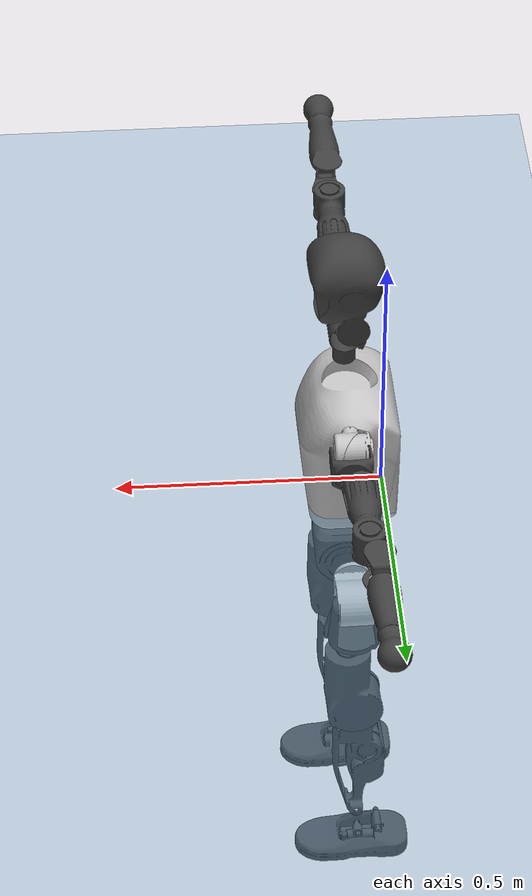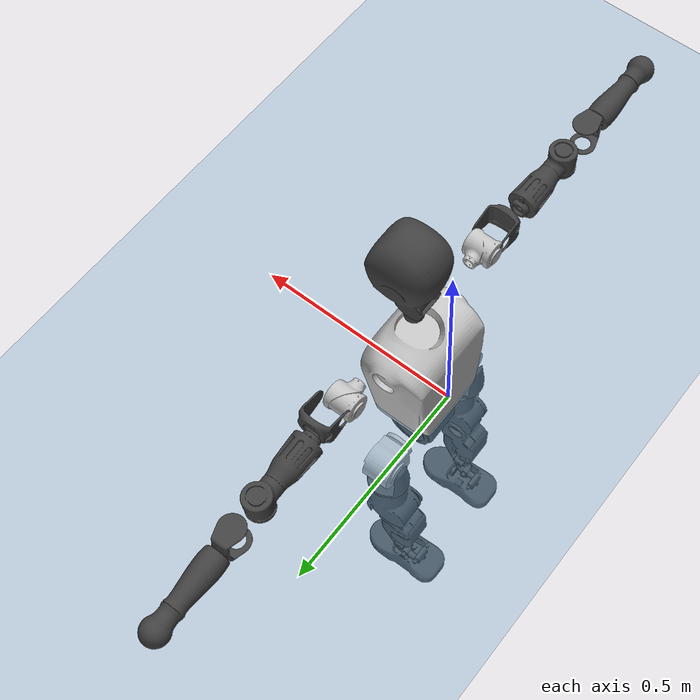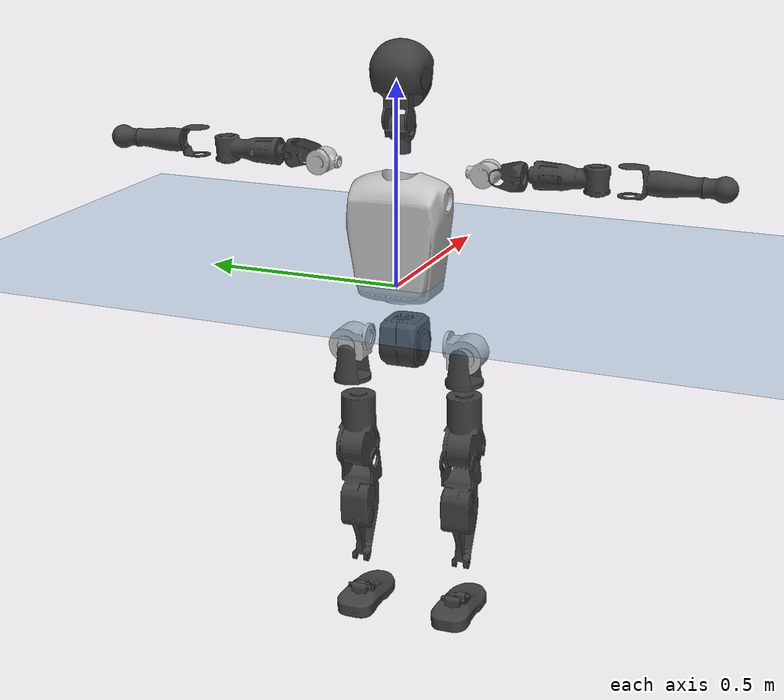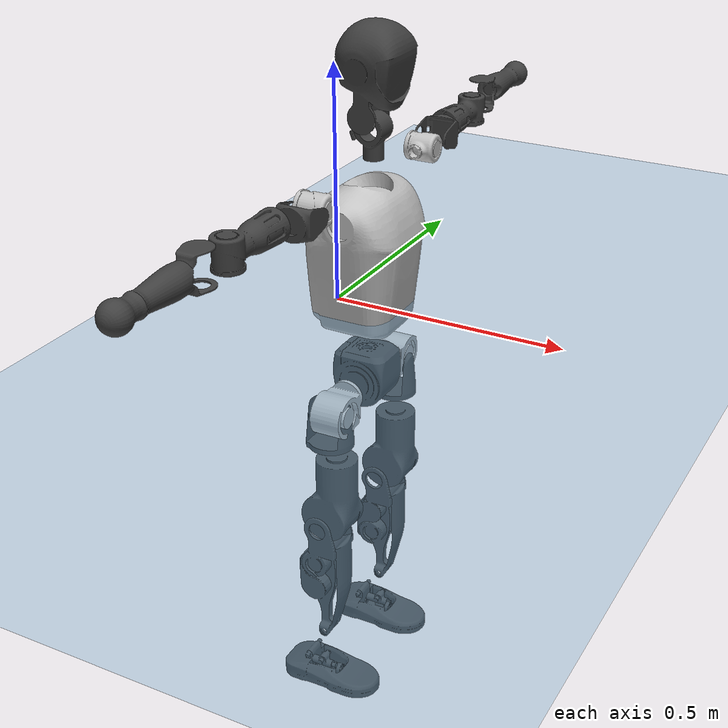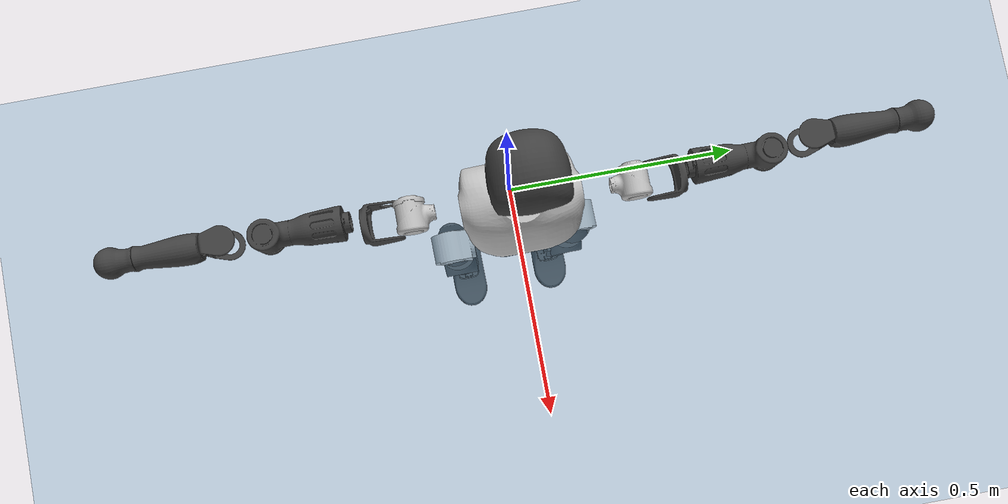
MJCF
<mujoco model="T1">
  <compiler angle="radian" assetdir="assets" balanceinertia="true" inertiafromgeom="false"/>

  <option timestep="0.005" density="1.2" viscosity="2e-05"/>

  <size nkey="1"/>

  <visual>
    <quality shadowsize="8192"/>
    <map shadowclip="0.5"/>
  </visual>

  <default>
    <default class="/">
      <joint armature="0.01" damping="0.01" frictionloss="0.1"/>
      <geom contype="0" conaffinity="0" group="1" solref="-1000 -80"/>
      <site size="0.01 0.005 0.005" group="5"/>
      <general forcelimited="true" biastype="affine" gainprm="25" biasprm="0 -25 -0.6"/>
      <default class="t1">
        <geom rgba="0.25 0.25 0.25 1"/>
        <default class="visual">
          <geom type="mesh" group="2"/>
        </default>
        <default class="collision">
          <geom group="3"/>
        </default>
        <default class="foot">
          <geom size="0.1115 0.05 0.015" type="box" condim="6" group="4" priority="1" solimp="0.015 1 0.015"/>
        </default>
        <default class="reward_collision_sphere">
          <geom group="5" rgba="1 0 0 1"/>
        </default>
      </default>
    </default>
  </default>

  <asset>
    <texture type="skybox" colorspace="auto" name="//unnamed_texture_0" builtin="gradient" rgb1="0.95 0.95 0.95" rgb2="0.95 0.95 0.95" width="100" height="600"/>
    <texture type="2d" colorspace="auto" name="texplane" builtin="checker" rgb1="0.345 0.575 0.748" rgb2="0.345 0.575 0.748" markrgb="1 1 1" width="512" height="512"/>
    <material name="MatPlane" class="/" texture="texplane" texuniform="true" texrepeat="2 2" specular="0.9"/>
    <mesh name="Trunk" class="/" file="Trunk.stl"/>
    <mesh name="H1" class="/" file="H1.stl"/>
    <mesh name="H2" class="/" file="H2.stl"/>
    <mesh name="AL1" class="/" file="AL1.stl"/>
    <mesh name="AL2" class="/" file="AL2.stl"/>
    <mesh name="AL3" class="/" file="AL3.stl"/>
    <mesh name="left_hand_link" class="/" file="left_hand_link.stl"/>
    <mesh name="AR1" class="/" file="AR1.stl"/>
    <mesh name="AR2" class="/" file="AR2.stl"/>
    <mesh name="AR3" class="/" file="AR3.stl"/>
    <mesh name="right_hand_link" class="/" file="right_hand_link.stl"/>
    <mesh name="Waist" class="/" file="Waist.stl"/>
    <mesh name="Hip_Pitch_Left" class="/" file="Hip_Pitch_Left.stl"/>
    <mesh name="Hip_Roll_Left" class="/" file="Hip_Roll_Left.stl"/>
    <mesh name="Hip_Yaw_Left" class="/" file="Hip_Yaw_Left.stl"/>
    <mesh name="Shank_Left" class="/" file="Shank_Left.stl"/>
    <mesh name="Ankle_Cross_Left" class="/" file="Ankle_Cross_Left.stl"/>
    <mesh name="left_foot_link" class="/" file="left_foot_link.stl"/>
    <mesh name="Hip_Pitch_Right" class="/" file="Hip_Pitch_Right.stl"/>
    <mesh name="Hip_Roll_Right" class="/" file="Hip_Roll_Right.stl"/>
    <mesh name="Hip_Yaw_Right" class="/" file="Hip_Yaw_Right.stl"/>
    <mesh name="Shank_Right" class="/" file="Shank_Right.stl"/>
    <mesh name="Ankle_Cross_Right" class="/" file="Ankle_Cross_Right.stl"/>
    <mesh name="right_foot_link" class="/" file="right_foot_link.stl"/>
  </asset>

  <worldbody>
    <geom name="floor" class="/" size="100 100 0.125" type="plane" group="0" material="MatPlane"/>
    <light name="toplight_shadow" class="/" pos="0 0 5" dir="0.0990148 0.0990148 -0.990148" type="directional" ambient="0.04 0.04 0.04" diffuse="0.55 0.55 0.55" specular="0.12 0.12 0.12"/>
    <light name="toplight_fill" class="/" pos="0 0 5" dir="0.0990148 0.0990148 -0.990148" type="directional" castshadow="false" ambient="0.04 0.04 0.04" diffuse="0.3 0.3 0.3" specular="0.08 0.08 0.08"/>
    <body name="trunk" childclass="t1" pos="0.00768882 0.0123136 -0.00912079" quat="0.999988 -0.00267824 0.00232384 0.00326527">
      <inertial pos="0.0579287 0.00604031 0.130837" quat="0.999654 -0.0107571 -0.0190906 -0.0145366" mass="27.4369" diaginertia="0.122642 0.451094 0.197412"/>
      <joint name="//unnamed_joint_0" type="free" armature="0" damping="0" frictionloss="0"/>
      <geom name="//unnamed_geom_1" class="visual" rgba="0.76 0.76 0.76 1" mesh="Trunk"/>
      <geom name="//unnamed_geom_2" class="collision" size="0.0979158 0.130554 0.195832" pos="0.0648102 0 0.158528" type="box"/>
      <geom name="//unnamed_geom_3" class="reward_collision_sphere" size="0.150137" pos="0.0648102 0 0.132107"/>
      <geom name="//unnamed_geom_4" class="reward_collision_sphere" size="0.0195832" pos="0.0648102 0.128808 0"/>
      <geom name="//unnamed_geom_5" class="reward_collision_sphere" size="0.0195832" pos="0.0648102 -0.128808 0"/>
      <geom name="//unnamed_geom_6" class="reward_collision_sphere" size="0.0195832" pos="0.0648102 0.162147 0.237792"/>
      <geom name="//unnamed_geom_7" class="reward_collision_sphere" size="0.0195832" pos="0.0648102 -0.162147 0.237792"/>
      <site name="imu" pos="0.0511817 0.0689316 -0.0078086" size="0.0130554"/>
      <camera name="track" pos="0 -3.03078 0" quat="0.707107 0.707107 0 0" mode="trackcom"/>
      <camera name="ego_camera" pos="0.131781 0 0.554848" quat="-0.5 -0.5 0.5 0.5"/>
      <body name="H1" pos="0.0674793 0.00257045 0.322406" quat="0.99999 -0.00185102 0.000646012 0.00404749">
        <inertial pos="-0.00962754 -0.00467314 0.0660366" quat="0.714529 0.0108298 0.0266343 0.699015" mass="0.951504" diaginertia="0.000315841 0.00144394 0.00063381"/>
        <joint name="AAHead_yaw" pos="0 0 0" axis="-0.00183954 -0.0690711 0.99761" stiffness="0.00504878" range="-1.3617 1.49755" armature="0.0064916" damping="0.00695648" frictionloss="0.202805"/>
        <geom name="//unnamed_geom_8" class="visual" mesh="H1"/>
        <body name="H2" pos="-0.0131626 0.00347135 0.0840084" quat="0.999999 0.000295417 0.000509364 -0.00127845">
          <inertial pos="0.00520507 0.016843 0.130375" quat="0.984888 0.12633 -0.082965 -0.0845805" mass="1.6122" diaginertia="0.00335979 0.021249 0.00804114"/>
          <joint name="Head_pitch" pos="0 0 0" axis="0.0336785 -0.998178 0.0500549" stiffness="0.0394197" range="-1.14385 0.177026" armature="0.0101968" damping="0" frictionloss="0.177794"/>
          <geom name="//unnamed_geom_9" class="visual" mesh="H2"/>
          <geom name="//unnamed_geom_10" class="collision" size="0.104443" pos="0.0108017 0 0.145317"/>
          <geom name="//unnamed_geom_11" class="reward_collision_sphere" size="0.117499" pos="0.0216034 0 0.132107"/>
        </body>
      </body>
      <body name="AL1" pos="0.0721949 0.170242 0.285388" quat="0.999997 0.000482817 -0.00193332 -0.00164824">
        <inertial pos="-0.00416151 0.0619916 0.0150872" quat="0.462816 0.523076 -0.472011 0.537958" mass="0.927187" diaginertia="0.00161334 0.00842678 0.000978025"/>
        <joint name="Left_Shoulder_Pitch" pos="0 0 0" axis="0.0310854 0.997779 0.0589159" range="-3.31527 1.37566" armature="0.0168979" damping="0.0210783" frictionloss="0.107286"/>
        <geom name="//unnamed_geom_12" class="visual" rgba="0.76 0.76 0.76 1" mesh="AL1"/>
        <body name="AL2" pos="0.00623624 0.0829254 0.0127328" quat="0.999964 -0.00605384 0.00502191 0.00305694">
          <inertial pos="0.00493505 0.0737705 -0.000857076" quat="0.489942 0.511759 -0.489702 0.508185" mass="0.364352" diaginertia="0.000571452 0.00311549 0.000724095"/>
          <joint name="Left_Shoulder_Roll" pos="0 0 0" axis="-0.996578 0.0369643 -0.0739363" stiffness="0.0756491" range="-1.85794 1.8627" armature="0.0184405" damping="0.0864339" frictionloss="0.0397746"/>
          <geom name="//unnamed_geom_13" class="visual" mesh="AL2"/>
          <body name="AL3" pos="-0.0102733 0.0757434 0.00305351" quat="0.999973 -0.0023924 -0.00595153 0.00345974">
            <inertial pos="0.00126146 0.142213 0.00659372" quat="0.71482 0.697824 -0.0254422 -0.0377684" mass="2.00082" diaginertia="0.0207708 0.0949797 0.00332188"/>
            <joint name="Left_Elbow_Pitch" pos="0 0 0" axis="0.00791157 -0.998096 -0.0611622" stiffness="0.0622162" range="-2.59777 2.57681" armature="0.00297474" damping="0.0828919" frictionloss="0.0540409"/>
            <geom name="//unnamed_geom_14" class="visual" mesh="AL3"/>
            <geom name="//unnamed_geom_15" class="collision" size="0.0391663 0.0979158" pos="0 0.0757696 0" quat="0.707105 0.707108 0 0" type="cylinder"/>
            <geom name="//unnamed_geom_16" class="reward_collision_sphere" size="0.0469996"/>
            <body name="left_hand_link" pos="-0.00842039 0.222686 0.0147995" quat="0.999986 0.000756234 -0.00141533 0.00511995">
              <inertial pos="0.000422087 0.166035 0.0129172" quat="0.716411 0.697587 0.00882313 0.00703563" mass="0.650392" diaginertia="0.0108537 0.0688927 0.000819714"/>
              <joint name="Left_Elbow_Yaw" pos="0 0 0" axis="-0.02466 0.043109 0.998766" range="-2.41872 -0.0143009" armature="0.0166113" damping="0.00879856" frictionloss="0.0676235"/>
              <geom name="//unnamed_geom_17" class="visual" mesh="left_hand_link"/>
              <geom name="//unnamed_geom_18" class="collision" size="0.0391663 0.114235" pos="0 0.197001 0" quat="0.707105 0.707108 0 0" type="cylinder"/>
              <geom name="//unnamed_geom_19" class="reward_collision_sphere" size="0.0652772"/>
              <geom name="//unnamed_geom_20" class="reward_collision_sphere" size="0.045694" pos="0 0.166693 0"/>
              <geom name="//unnamed_geom_21" class="reward_collision_sphere" size="0.045694" pos="0 0.325809 0"/>
            </body>
          </body>
        </body>
      </body>
      <body name="AR1" pos="0.0602031 -0.16799 0.290453" quat="0.999991 -0.000535556 0.00159395 -0.00384339">
        <inertial pos="-0.00131917 -0.054236 -0.0142582" quat="0.505781 0.497962 -0.506782 0.489277" mass="1.17222" diaginertia="0.0021694 0.0101289 0.000943306"/>
        <joint name="Right_Shoulder_Pitch" pos="0 0 0" axis="-0.000289536 -0.999999 0.00100445" range="-1.10327 3.31442" armature="0.0191843" damping="0" frictionloss="0.098779"/>
        <geom name="//unnamed_geom_22" class="visual" rgba="0.76 0.76 0.76 1" mesh="AR1"/>
        <body name="AR2" pos="0.00329949 -0.084187 -0.00180495" quat="1 -0.000493984 -0.000369912 -0.000104222">
          <inertial pos="0.0043024 -0.0587397 0.0150459" quat="0.482005 0.483278 -0.547378 0.484243" mass="0.292799" diaginertia="0.000620153 0.00303039 0.000766763"/>
          <joint name="Right_Shoulder_Roll" pos="0 0 0" axis="-0.999991 0.00368546 0.00214497" range="-1.61484 1.29765" armature="0.0137883" damping="0.0785398" frictionloss="0.134502"/>
          <geom name="//unnamed_geom_23" class="visual" mesh="AR2"/>
          <body name="AR3" pos="-0.0113968 -0.0881379 0.0102373" quat="0.999999 -0.00133724 7.26519e-05 4.7769e-05">
            <inertial pos="-0.00697244 -0.120088 0.0039626" quat="0.707819 0.706394 -0.000428589 0.000378188" mass="2.01748" diaginertia="0.0172981 0.0804665 0.00201942"/>
            <joint name="Right_Elbow_Pitch" pos="0 0 0" axis="-0.00453472 0.999382 0.0348442" stiffness="0.0511669" range="-2.27517 2.26149" armature="0.00358543" damping="0" frictionloss="0.22278"/>
            <geom name="//unnamed_geom_24" class="visual" mesh="AR3"/>
            <geom name="//unnamed_geom_25" class="collision" size="0.0391663 0.0979158" pos="0 -0.0757696 0" quat="0.707105 0.707108 0 0" type="cylinder"/>
            <geom name="//unnamed_geom_26" class="reward_collision_sphere" size="0.0469996"/>
            <body name="right_hand_link" pos="-0.00205469 -0.225075 0.00371015" quat="0.999988 0.00383825 -0.00243702 -0.00158801">
              <inertial pos="0.00559549 -0.16381 0.0166519" quat="0.659037 0.750879 -0.0125699 0.0411529" mass="0.578614" diaginertia="0.014212 0.0649137 0.000764273"/>
              <joint name="Right_Elbow_Yaw" pos="0 0 0" axis="0.0432693 0.0182232 0.998897" stiffness="0.0679984" range="0.285837 2.13155" armature="0.0165865" damping="0.0341814" frictionloss="0.0921515"/>
              <geom name="//unnamed_geom_27" class="visual" mesh="right_hand_link"/>
              <geom name="//unnamed_geom_28" class="collision" size="0.0391663 0.114235" pos="0 -0.197001 0" quat="0.707105 0.707108 0 0" type="cylinder"/>
              <geom name="//unnamed_geom_29" class="reward_collision_sphere" size="0.0652772"/>
              <geom name="//unnamed_geom_30" class="reward_collision_sphere" size="0.045694" pos="0 -0.166693 0"/>
              <geom name="//unnamed_geom_31" class="reward_collision_sphere" size="0.045694" pos="0 -0.325809 0"/>
            </body>
          </body>
        </body>
      </body>
      <body name="Waist" pos="0.0590588 -0.00711175 -0.156417" quat="0.999993 -0.00264485 -0.00154687 0.00205847">
        <inertial pos="-0.0012313 -0.0011405 0.000751405" quat="0.979009 0.00678402 -0.19908 0.043149" mass="6.52254" diaginertia="0.00917804 0.044088 0.0192049"/>
        <joint name="Waist" pos="0 0 0" axis="0.0309838 -0.0604138 0.997692" stiffness="0.0829382" range="-1.55558 1.61564" armature="0.00853959" damping="0" frictionloss="0.215096"/>
        <geom name="//unnamed_geom_32" class="visual" mesh="Waist"/>
        <body name="Hip_Pitch_Left" pos="-0.00470494 0.146887 0.00711797" quat="0.999993 0.00212987 -0.000175109 0.00298216">
          <inertial pos="-0.0143981 -0.0195538 -0.0102648" quat="0.98915 0.14599 0.012034 0.0111914" mass="1.95017" diaginertia="0.00256993 0.0114826 0.00454107"/>
          <joint name="Left_Hip_Pitch" pos="0 0 0" axis="0.017627 0.999131 0.0377616" stiffness="0.00769196" range="-1.81622 1.28916" armature="0.0149604" damping="0.0715142" frictionloss="0.158265"/>
          <geom name="//unnamed_geom_33" class="visual" rgba="0.76 0.76 0.76 1" mesh="Hip_Pitch_Left"/>
          <body name="Hip_Roll_Left" pos="0.000159837 -0.00502403 -0.0403261" quat="0.999996 0.00115807 -0.00214954 0.00166048">
            <inertial pos="0.0118084 -0.0124755 -0.0697854" quat="0.702405 0.0193524 0.0434452 0.710186" mass="0.955069" diaginertia="0.00250171 0.0168876 0.00253413"/>
            <joint name="Left_Hip_Roll" pos="0 0 0" axis="-0.999243 -0.0114318 0.037196" stiffness="0.0181805" range="-1.55389 0.0374375" armature="0.0121447" damping="0" frictionloss="0.203336"/>
            <geom name="//unnamed_geom_34" class="visual" mesh="Hip_Roll_Left"/>
            <geom name="//unnamed_geom_35" class="reward_collision_sphere" size="0.0718049"/>
            <body name="Hip_Yaw_Left" pos="0.0075267 -0.0117637 -0.119816" quat="1 -0.00022114 -5.59044e-05 -0.000288638">
              <inertial pos="-0.00830085 0.00118819 -0.114418" quat="0.684411 -0.0660673 0.0342369 0.725289" mass="6.16179" diaginertia="0.0415817 0.212634 0.0125888"/>
              <joint name="Left_Hip_Yaw" pos="0 0 0" axis="-0.0456713 -0.0549718 -0.997443" stiffness="0.0206603" range="-1.18395 1.24315" armature="0.0150562" damping="0" frictionloss="0.124352"/>
              <geom name="//unnamed_geom_36" class="visual" mesh="Hip_Yaw_Left"/>
              <geom name="//unnamed_geom_37" class="collision" size="0.0652772 0.104443" type="cylinder"/>
              <body name="Shank_Left" pos="-0.0269335 -0.0137538 -0.163759" quat="1 0.000822962 -0.000414188 -0.000208071">
                <inertial pos="-0.0112457 0.0158555 -0.164246" quat="0.997715 -0.00427861 -0.00756977 0.0670008" mass="3.94509" diaginertia="0.0418035 0.275049 0.00614684"/>
                <joint name="Left_Knee_Pitch" pos="0 0 0" axis="0.00500297 0.999795 -0.0195985" range="-0.181992 2.35307" armature="0.00852448" damping="0" frictionloss="0.0203984"/>
                <geom name="//unnamed_geom_38" class="visual" mesh="Shank_Left"/>
                <geom name="//unnamed_geom_39" class="collision" size="0.0652772 0.0979158" pos="0 0 -0.158528" type="cylinder"/>
                <geom name="//unnamed_geom_40" class="reward_collision_sphere" size="0.0848603"/>
                <body name="Ankle_Cross_Left" pos="-0.00627199 -0.00475781 -0.359585" quat="1 -0.000109614 -9.99554e-05 5.3094e-05">
                  <inertial pos="-0.00183808 0.00246329 -0.0201994" quat="0.430659 0.541915 0.564551 0.449604" mass="0.222782" diaginertia="4.3693e-05 0.000296061 5.73837e-05"/>
                  <joint name="Left_Ankle_Pitch" pos="0 0 0" axis="0.0495565 0.996917 -0.0608272" stiffness="0.0754611" range="-0.729521 0.456207" armature="0.0132057" damping="0" frictionloss="0.185985"/>
                  <geom name="//unnamed_geom_41" class="visual" mesh="Ankle_Cross_Left"/>
                  <body name="left_foot_link" pos="0.0017948 -0.009144 -0.0165304" quat="0.999969 0.0054773 0.00242517 -0.00505261">
                    <inertial pos="-0.0148032 -0.000613246 -0.00449778" quat="-0.0159652 0.596298 0.0526047 0.800878" mass="1.40905" diaginertia="0.00354983 0.0169076 0.00904997"/>
                    <joint name="Left_Ankle_Roll" pos="0 0 0" axis="-0.999752 0.0197705 -0.0102675" stiffness="0.00655244" range="-0.455098 0.625863" armature="0.0126839" damping="0.0633298" frictionloss="0.083582"/>
                    <geom name="//unnamed_geom_42" class="visual" mesh="left_foot_link"/>
                    <geom name="left_foot" class="foot" size="0.082814 0.0834178 0.0318744" pos="0.0108017 0 -0.019816"/>
                    <geom name="//unnamed_geom_44" class="reward_collision_sphere" size="0.0678883" pos="0.0108017 0 -0.019816"/>
                    <geom name="//unnamed_geom_45" class="reward_collision_sphere" size="0.0391663" pos="0.102616 -0.034854 -0.019816"/>
                    <geom name="//unnamed_geom_46" class="reward_collision_sphere" size="0.0391663" pos="-0.075612 -0.034854 -0.019816"/>
                    <site name="left_foot" class="foot" pos="0.0108017 0 -0.019816" size="0.0130554"/>
                  </body>
                </body>
              </body>
            </body>
          </body>
        </body>
        <body name="Hip_Pitch_Right" pos="0.0123632 -0.162632 0.00546123" quat="0.999985 -0.00400827 -0.00344219 0.00107349">
          <inertial pos="0.0102002 0.0176052 -0.0363679" quat="0.974214 -0.22479 0.0188284 0.00480461" mass="2.13562" diaginertia="0.00220916 0.0102325 0.00459891"/>
          <joint name="Right_Hip_Pitch" pos="0 0 0" axis="-0.0195486 -0.999745 0.0113187" range="-1.55783 1.8369" armature="0.0145408" damping="0.0572651" frictionloss="0.0567212"/>
          <geom name="//unnamed_geom_47" class="visual" rgba="0.76 0.76 0.76 1" mesh="Hip_Pitch_Right"/>
          <body name="Hip_Roll_Right" pos="-0.0131361 0.00615042 -0.0183465" quat="1 -0.000662284 -0.00033096 0.000510275">
            <inertial pos="0.0147333 0.00912883 -0.0588894" quat="0.696907 0.0164153 0.029963 0.716347" mass="0.727692" diaginertia="0.00252092 0.012283 0.00231268"/>
            <joint name="Right_Hip_Roll" pos="0 0 0" axis="-0.999569 0.0293405 -0.000449294" range="-0.00471511 1.65289" armature="0.00668775" damping="0.00276838" frictionloss="0.189255"/>
            <geom name="//unnamed_geom_48" class="visual" mesh="Hip_Roll_Right"/>
            <geom name="//unnamed_geom_49" class="reward_collision_sphere" size="0.0718049"/>
            <body name="Hip_Yaw_Right" pos="0.0100441 0.00404514 -0.110371" quat="1 -3.62118e-05 -0.00069662 0.000367209">
              <inertial pos="-0.00936026 0.0134094 -0.133006" quat="0.714491 -0.0376316 -0.0121035 0.698527" mass="3.8671" diaginertia="0.0357884 0.141375 0.00996222"/>
              <joint name="Right_Hip_Yaw" pos="0 0 0" axis="-0.00507934 0.000379692 -0.999987" range="-0.946327 0.982107" armature="0.0231873" damping="0.0481607" frictionloss="0.159784"/>
              <geom name="//unnamed_geom_50" class="visual" mesh="Hip_Yaw_Right"/>
              <geom name="//unnamed_geom_51" class="collision" size="0.0652772 0.104443" type="cylinder"/>
              <body name="Shank_Right" pos="-0.0295594 0.00339559 -0.169709" quat="1 1.90648e-05 -2.18461e-06 5.57427e-05">
                <inertial pos="-0.022001 -0.0170162 -0.168874" quat="0.997852 0.0453593 -0.0470113 -0.00496411" mass="3.20961" diaginertia="0.0329018 0.245017 0.0071207"/>
                <joint name="Right_Knee_Pitch" pos="0 0 0" axis="-0.00497788 -0.997288 -0.0734247" stiffness="0.0298058" range="-2.34248 -0.0263461" armature="0.0096278" damping="0.000774031" frictionloss="0.0749656"/>
                <geom name="//unnamed_geom_52" class="visual" mesh="Shank_Right"/>
                <geom name="//unnamed_geom_53" class="collision" size="0.0652772 0.0979158" pos="0 0 -0.158528" type="cylinder"/>
                <geom name="//unnamed_geom_54" class="reward_collision_sphere" size="0.0848603"/>
                <body name="Ankle_Cross_Right" pos="-0.00937877 -0.00635961 -0.367215" quat="0.999996 -0.00272757 0.000974715 0.000525913">
                  <inertial pos="-0.0110965 -0.00950827 -0.0107056" quat="0.453882 0.579722 0.533834 0.415853" mass="0.185965" diaginertia="3.63831e-05 0.000203521 5.0967e-05"/>
                  <joint name="Right_Ankle_Pitch" pos="0 0 0" axis="-0.0675753 -0.996464 -0.0499311" stiffness="0.0237614" range="-0.21428 0.83308" armature="0.00935482" damping="0.00306222" frictionloss="0.0893338"/>
                  <geom name="//unnamed_geom_55" class="visual" mesh="Ankle_Cross_Right"/>
                  <body name="right_foot_link" pos="0.00695132 0.0124989 -0.0278306" quat="1 -3.94862e-05 -0.000656971 -0.000607016">
                    <inertial pos="-0.0157149 0.000709501 -0.0224443" quat="-0.0118133 0.605828 0.0552411 0.793588" mass="1.49169" diaginertia="0.00318795 0.0198025 0.009872"/>
                    <joint name="Right_Ankle_Roll" pos="0 0 0" axis="-0.998031 -0.0622787 -0.00747612" range="-0.42243 0.584648" armature="0.00806604" damping="0.00545321" frictionloss="0.225706"/>
                    <geom name="//unnamed_geom_56" class="visual" mesh="right_foot_link"/>
                    <geom name="right_foot" class="foot" size="0.0850675 0.0787485 0.0269472" pos="0.0108017 0 -0.019816"/>
                    <geom name="//unnamed_geom_58" class="reward_collision_sphere" size="0.0522217"/>
                    <geom name="//unnamed_geom_59" class="reward_collision_sphere" size="0.0391663" pos="0.0108017 0 -0.019816"/>
                    <geom name="//unnamed_geom_60" class="reward_collision_sphere" size="0.0391663" pos="0.102616 0.034854 -0.019816"/>
                    <geom name="//unnamed_geom_61" class="reward_collision_sphere" size="0.0391663" pos="-0.075612 0.034854 -0.019816"/>
                    <site name="right_foot" class="foot" pos="0.0108017 0 -0.019816" size="0.0130554"/>
                  </body>
                </body>
              </body>
            </body>
          </body>
        </body>
      </body>
    </body>
  </worldbody>

  <contact>
    <pair class="/" geom1="floor" geom2="left_foot" name="//unnamed_contact_0"/>
    <pair class="/" geom1="floor" geom2="right_foot" name="//unnamed_contact_1"/>
  </contact>

  <actuator>
    <general name="AAHead_yaw" class="/" joint="AAHead_yaw" forcerange="-13.8207 13.8207" gainprm="36.682" biasprm="0 -36.682 -0.753424"/>
    <general name="Head_pitch" class="/" joint="Head_pitch" forcerange="-6.68785 6.68785" gainprm="36.682" biasprm="0 -36.682 -0.753424"/>
    <general name="Left_Shoulder_Pitch" class="/" joint="Left_Shoulder_Pitch" forcerange="-22.3406 22.3406" gainprm="36.682" biasprm="0 -36.682 -0.753424"/>
    <general name="Left_Shoulder_Roll" class="/" joint="Left_Shoulder_Roll" forcerange="-16.5053 16.5053" gainprm="36.682" biasprm="0 -36.682 -0.753424"/>
    <general name="Left_Elbow_Pitch" class="/" joint="Left_Elbow_Pitch" forcerange="-12.9143 12.9143" gainprm="36.682" biasprm="0 -36.682 -0.753424"/>
    <general name="Left_Elbow_Yaw" class="/" joint="Left_Elbow_Yaw" forcerange="-9.67763 9.67763" gainprm="36.682" biasprm="0 -36.682 -0.753424"/>
    <general name="Right_Shoulder_Pitch" class="/" joint="Right_Shoulder_Pitch" forcerange="-24.0854 24.0854" gainprm="36.682" biasprm="0 -36.682 -0.753424"/>
    <general name="Right_Shoulder_Roll" class="/" joint="Right_Shoulder_Roll" forcerange="-12.8515 12.8515" gainprm="36.682" biasprm="0 -36.682 -0.753424"/>
    <general name="Right_Elbow_Pitch" class="/" joint="Right_Elbow_Pitch" forcerange="-14.7239 14.7239" gainprm="36.682" biasprm="0 -36.682 -0.753424"/>
    <general name="Right_Elbow_Yaw" class="/" joint="Right_Elbow_Yaw" forcerange="-33.5699 33.5699" gainprm="36.682" biasprm="0 -36.682 -0.753424"/>
    <general name="Waist" class="/" joint="Waist" forcerange="-40.6555 40.6555" gainprm="36.682" biasprm="0 -36.682 -0.753424"/>
    <general name="Left_Hip_Pitch" class="/" joint="Left_Hip_Pitch" forcerange="-37.4645 37.4645" gainprm="36.682" biasprm="0 -36.682 -0.753424"/>
    <general name="Left_Hip_Roll" class="/" joint="Left_Hip_Roll" forcerange="-44.7871 44.7871" gainprm="36.682" biasprm="0 -36.682 -0.753424"/>
    <general name="Left_Hip_Yaw" class="/" joint="Left_Hip_Yaw" forcerange="-29.7928 29.7928" gainprm="36.682" biasprm="0 -36.682 -0.753424"/>
    <general name="Left_Knee_Pitch" class="/" joint="Left_Knee_Pitch" forcerange="-75.3186 75.3186" gainprm="36.682" biasprm="0 -36.682 -0.753424"/>
    <general name="Left_Ankle_Pitch" class="/" joint="Left_Ankle_Pitch" forcerange="-20.5296 20.5296" gainprm="36.682" biasprm="0 -36.682 -0.753424"/>
    <general name="Left_Ankle_Roll" class="/" joint="Left_Ankle_Roll" forcerange="-19.3637 19.3637" gainprm="36.682" biasprm="0 -36.682 -0.753424"/>
    <general name="Right_Hip_Pitch" class="/" joint="Right_Hip_Pitch" forcerange="-63.5725 63.5725" gainprm="36.682" biasprm="0 -36.682 -0.753424"/>
    <general name="Right_Hip_Roll" class="/" joint="Right_Hip_Roll" forcerange="-38.0623 38.0623" gainprm="36.682" biasprm="0 -36.682 -0.753424"/>
    <general name="Right_Hip_Yaw" class="/" joint="Right_Hip_Yaw" forcerange="-37.3679 37.3679" gainprm="36.682" biasprm="0 -36.682 -0.753424"/>
    <general name="Right_Knee_Pitch" class="/" joint="Right_Knee_Pitch" forcerange="-103.72 103.72" gainprm="36.682" biasprm="0 -36.682 -0.753424"/>
    <general name="Right_Ankle_Pitch" class="/" joint="Right_Ankle_Pitch" forcerange="-37.8085 37.8085" gainprm="36.682" biasprm="0 -36.682 -0.753424"/>
    <general name="Right_Ankle_Roll" class="/" joint="Right_Ankle_Roll" forcerange="-12.3598 12.3598" gainprm="36.682" biasprm="0 -36.682 -0.753424"/>
  </actuator>

  <sensor>
    <gyro site="imu" name="imu_angular_velocity"/>
    <velocimeter site="imu" name="imu_linear_velocity"/>
    <framelinvel objtype="site" objname="left_foot" name="left_foot_global_linear_velocity"/>
    <framelinvel objtype="site" objname="right_foot" name="right_foot_global_linear_velocity"/>
  </sensor>

  <keyframe>
    <key name="home" qpos="0 0 0.6385 1 0 0 0 0 0 0 1.4 0 -0.4 0 -1.4 0 0.4 0 -0.4 0 0 0.8 -0.4 0 0.4 0 0 -0.8 0.4 0"/>
  </keyframe>
</mujoco>
